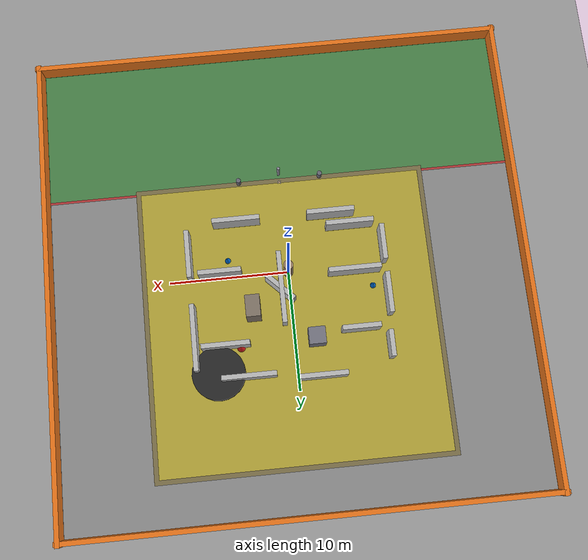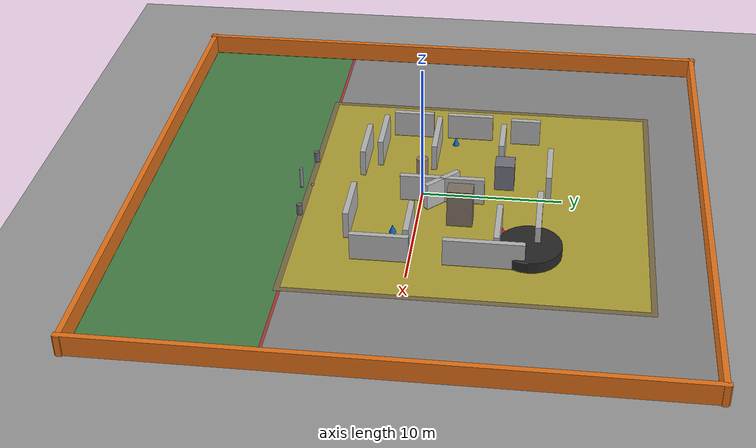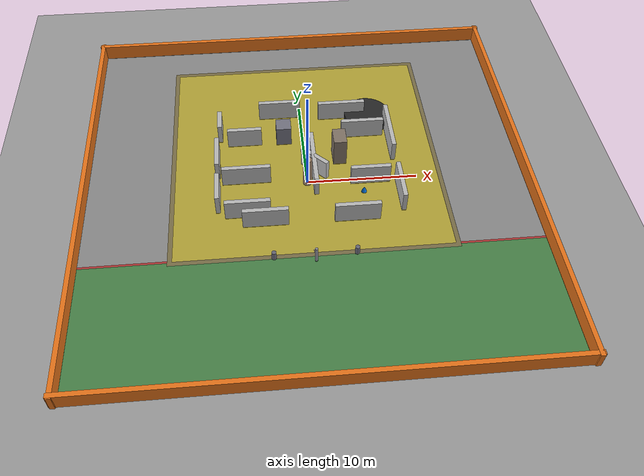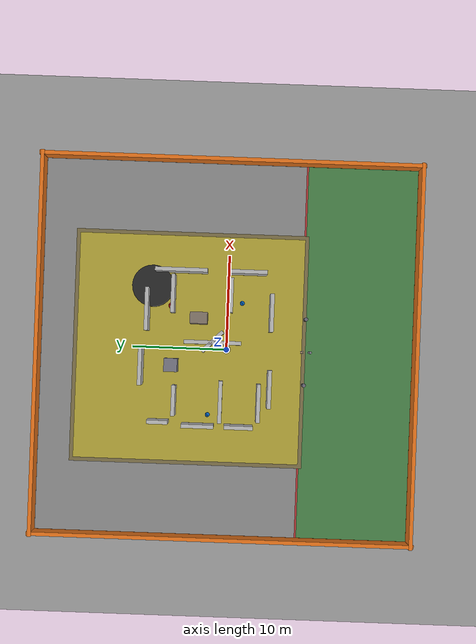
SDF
<?xml version="1.0" ?>
<sdf version="1.9">
  <world name="playfield">
    <physics name="1ms" type="ode">
      <max_step_size>0.001</max_step_size>
      <real_time_factor>1.0</real_time_factor>
      <real_time_update_rate>1000</real_time_update_rate>
    </physics>

    <plugin
      filename="gz-sim-physics-system"
      name="gz::sim::systems::Physics">
    </plugin>
    <plugin
      filename="gz-sim-user-commands-system"
      name="gz::sim::systems::UserCommands">
    </plugin>
    <!-- PX4 SITL sensors (IMU / barometer / GPS) require these system plugins, like PX4's default worlds. -->
    <plugin
      filename="gz-sim-contact-system"
      name="gz::sim::systems::Contact">
    </plugin>
    <plugin
      filename="gz-sim-imu-system"
      name="gz::sim::systems::Imu">
    </plugin>
    <plugin
      filename="gz-sim-air-pressure-system"
      name="gz::sim::systems::AirPressure">
    </plugin>
    <plugin
      filename="gz-sim-apply-link-wrench-system"
      name="gz::sim::systems::ApplyLinkWrench">
    </plugin>
    <plugin
      filename="gz-sim-navsat-system"
      name="gz::sim::systems::NavSat">
    </plugin>
    <plugin
      filename="gz-sim-sensors-system"
      name="gz::sim::systems::Sensors">
      <render_engine>ogre2</render_engine>
    </plugin>
    <plugin
      filename="gz-sim-scene-broadcaster-system"
      name="gz::sim::systems::SceneBroadcaster">
    </plugin>

    <light type="directional" name="sun">
      <cast_shadows>true</cast_shadows>
      <pose>0 0 10 0 0 0</pose>
      <diffuse>0.8 0.8 0.8 1</diffuse>
      <specular>0.2 0.2 0.2 1</specular>
      <attenuation>
        <range>1000</range>
        <constant>0.9</constant>
        <linear>0.01</linear>
        <quadratic>0.001</quadratic>
      </attenuation>
      <direction>-0.5 0.1 -0.9</direction>
    </light>

    <!-- Base field -->
    <model name="ground_plane">
      <static>true</static>
      <link name="link">
        <collision name="collision">
          <geometry>
            <plane>
              <normal>0 0 1</normal>
              <size>40 40</size>
            </plane>
          </geometry>
        </collision>
        <visual name="visual">
          <geometry>
            <plane>
              <normal>0 0 1</normal>
              <size>40 40</size>
            </plane>
          </geometry>
          <material>
            <ambient>0.6 0.6 0.6 1</ambient>
            <diffuse>0.6 0.6 0.6 1</diffuse>
            <specular>0.2 0.2 0.2 1</specular>
          </material>
        </visual>
      </link>
    </model>

    <!-- Zone overlays -->
    <model name="start_zone">
      <static>true</static>
      <link name="link">
        <visual name="visual">
          <pose>0 -14 0.01 0 0 0</pose>
          <geometry>
            <box>
              <size>40 12 0.02</size>
            </box>
          </geometry>
          <material>
            <ambient>0 0.45 0 0.5</ambient>
            <diffuse>0 0.45 0 0.5</diffuse>
          </material>
        </visual>
      </link>
    </model>

    <model name="known_zone">
      <static>true</static>
      <link name="link">
        <visual name="visual">
          <pose>0 6 0.01 0 0 0</pose>
          <geometry>
            <box>
              <size>40 28 0.02</size>
            </box>
          </geometry>
          <material>
            <ambient>0.5 0.5 0.5 0.45</ambient>
            <diffuse>0.5 0.5 0.5 0.45</diffuse>
          </material>
        </visual>
      </link>
    </model>

    <model name="search_boundary">
      <static>true</static>
      <link name="link">
        <visual name="visual">
          <pose>0 -8 0.015 0 0 0</pose>
          <geometry>
            <box>
              <size>40 0.2 0.02</size>
            </box>
          </geometry>
          <material>
            <ambient>0.8 0 0 0.6</ambient>
            <diffuse>0.8 0 0 0.6</diffuse>
          </material>
        </visual>
      </link>
    </model>

    <model name="unknown_zone">
      <static>true</static>
      <link name="link">
        <visual name="visual">
          <pose>0 4 0.02 0 0 0</pose>
          <geometry>
            <box>
              <size>24 24 0.03</size>
            </box>
          </geometry>
          <material>
            <ambient>0.8 0.7 0 0.6</ambient>
            <diffuse>0.8 0.7 0 0.6</diffuse>
          </material>
        </visual>
      </link>
    </model>

    <model name="unknown_zone_border">
      <static>true</static>
      <link name="link">
        <visual name="visual">
          <pose>0 4 0.025 0 0 0</pose>
          <geometry>
            <box>
              <size>24.8 24.8 0.01</size>
            </box>
          </geometry>
          <material>
            <ambient>0.4 0.3 0 0.5</ambient>
            <diffuse>0.4 0.3 0 0.5</diffuse>
          </material>
        </visual>
      </link>
    </model>

    <!-- Perimeter walls (1.5 m) -->
    <model name="perimeter_wall_north">
      <static>true</static>
      <pose>0 20 0 0 0 0</pose>
      <link name="link">
        <collision name="collision">
          <pose>0 0 0.75 0 0 0</pose>
          <geometry>
            <box>
              <size>40.6 0.4 1.5</size>
            </box>
          </geometry>
        </collision>
        <visual name="visual">
          <pose>0 0 0.75 0 0 0</pose>
          <geometry>
            <box>
              <size>40.6 0.4 1.5</size>
            </box>
          </geometry>
          <material>
            <ambient>0.9 0.45 0.1 1</ambient>
            <diffuse>0.9 0.45 0.1 1</diffuse>
          </material>
        </visual>
      </link>
    </model>

    <model name="perimeter_wall_south">
      <static>true</static>
      <pose>0 -20 0 0 0 0</pose>
      <link name="link">
        <collision name="collision">
          <pose>0 0 0.75 0 0 0</pose>
          <geometry>
            <box>
              <size>40.6 0.4 1.5</size>
            </box>
          </geometry>
        </collision>
        <visual name="visual">
          <pose>0 0 0.75 0 0 0</pose>
          <geometry>
            <box>
              <size>40.6 0.4 1.5</size>
            </box>
          </geometry>
          <material>
            <ambient>0.9 0.45 0.1 1</ambient>
            <diffuse>0.9 0.45 0.1 1</diffuse>
          </material>
        </visual>
      </link>
    </model>

    <model name="perimeter_wall_east">
      <static>true</static>
      <pose>20 0 0 0 0 0</pose>
      <link name="link">
        <collision name="collision">
          <pose>0 0 0.75 0 0 0</pose>
          <geometry>
            <box>
              <size>0.4 40.6 1.5</size>
            </box>
          </geometry>
        </collision>
        <visual name="visual">
          <pose>0 0 0.75 0 0 0</pose>
          <geometry>
            <box>
              <size>0.4 40.6 1.5</size>
            </box>
          </geometry>
          <material>
            <ambient>0.9 0.45 0.1 1</ambient>
            <diffuse>0.9 0.45 0.1 1</diffuse>
          </material>
        </visual>
      </link>
    </model>

    <model name="perimeter_wall_west">
      <static>true</static>
      <pose>-20 0 0 0 0 0</pose>
      <link name="link">
        <collision name="collision">
          <pose>0 0 0.75 0 0 0</pose>
          <geometry>
            <box>
              <size>0.4 40.6 1.5</size>
            </box>
          </geometry>
        </collision>
        <visual name="visual">
          <pose>0 0 0.75 0 0 0</pose>
          <geometry>
            <box>
              <size>0.4 40.6 1.5</size>
            </box>
          </geometry>
          <material>
            <ambient>0.9 0.45 0.1 1</ambient>
            <diffuse>0.9 0.45 0.1 1</diffuse>
          </material>
        </visual>
      </link>
    </model>

    <!-- Inner maze walls (2 m) -->
    <model name="inner_wall_west_lower">
      <static>true</static>
      <pose>-8.1 -1.5 0 0 0 0</pose>
      <link name="link">
        <collision name="collision">
          <pose>0 0 1 0 0 0</pose>
          <geometry>
            <box>
              <size>0.4 3 2</size>
            </box>
          </geometry>
        </collision>
        <visual name="visual">
          <pose>0 0 1 0 0 0</pose>
          <geometry>
            <box>
              <size>0.4 3 2</size>
            </box>
          </geometry>
        </visual>
      </link>
    </model>

    <model name="inner_wall_west_mid">
      <static>true</static>
      <pose>-8.1 2.8 0 0 0 0</pose>
      <link name="link">
        <collision name="collision">
          <pose>0 0 1 0 0 0</pose>
          <geometry>
            <box>
              <size>0.4 3.4 2</size>
            </box>
          </geometry>
        </collision>
        <visual name="visual">
          <pose>0 0 1 0 0 0</pose>
          <geometry>
            <box>
              <size>0.4 3.4 2</size>
            </box>
          </geometry>
        </visual>
      </link>
    </model>

    <model name="inner_wall_west_upper">
      <static>true</static>
      <pose>-7.8 7 0 0 0 0</pose>
      <link name="link">
        <collision name="collision">
          <pose>0 0 1 0 0 0</pose>
          <geometry>
            <box>
              <size>0.4 2.2 2</size>
            </box>
          </geometry>
        </collision>
        <visual name="visual">
          <pose>0 0 1 0 0 0</pose>
          <geometry>
            <box>
              <size>0.4 2.2 2</size>
            </box>
          </geometry>
        </visual>
      </link>
    </model>

    <model name="inner_wall_west_bridge_low">
      <static>true</static>
      <pose>-5.5 -3.5 0 0 0 0</pose>
      <link name="link">
        <collision name="collision">
          <pose>0 0 1 0 0 0</pose>
          <geometry>
            <box>
              <size>4 0.4 2</size>
            </box>
          </geometry>
        </collision>
        <visual name="visual">
          <pose>0 0 1 0 0 0</pose>
          <geometry>
            <box>
              <size>4 0.4 2</size>
            </box>
          </geometry>
        </visual>
      </link>
    </model>

    <model name="inner_wall_west_bridge_mid">
      <static>true</static>
      <pose>-5.5 0.5 0 0 0 0</pose>
      <link name="link">
        <collision name="collision">
          <pose>0 0 1 0 0 0</pose>
          <geometry>
            <box>
              <size>4.4 0.4 2</size>
            </box>
          </geometry>
        </collision>
        <visual name="visual">
          <pose>0 0 1 0 0 0</pose>
          <geometry>
            <box>
              <size>4.4 0.4 2</size>
            </box>
          </geometry>
        </visual>
      </link>
    </model>

    <model name="inner_wall_west_bridge_high">
      <static>true</static>
      <pose>-5.5 5.4 0 0 0 0</pose>
      <link name="link">
        <collision name="collision">
          <pose>0 0 1 0 0 0</pose>
          <geometry>
            <box>
              <size>3.2 0.4 2</size>
            </box>
          </geometry>
        </collision>
        <visual name="visual">
          <pose>0 0 1 0 0 0</pose>
          <geometry>
            <box>
              <size>3.2 0.4 2</size>
            </box>
          </geometry>
        </visual>
      </link>
    </model>

    <model name="inner_wall_north_left">
      <static>true</static>
      <pose>-2 9 0 0 0 0</pose>
      <link name="link">
        <collision name="collision">
          <pose>0 0 1 0 0 0</pose>
          <geometry>
            <box>
              <size>4 0.4 2</size>
            </box>
          </geometry>
        </collision>
        <visual name="visual">
          <pose>0 0 1 0 0 0</pose>
          <geometry>
            <box>
              <size>4 0.4 2</size>
            </box>
          </geometry>
        </visual>
      </link>
    </model>

    <model name="inner_wall_north_right">
      <static>true</static>
      <pose>4 8.5 0 0 0 0</pose>
      <link name="link">
        <collision name="collision">
          <pose>0 0 1 0 0 0</pose>
          <geometry>
            <box>
              <size>4.5 0.4 2</size>
            </box>
          </geometry>
        </collision>
        <visual name="visual">
          <pose>0 0 1 0 0 0</pose>
          <geometry>
            <box>
              <size>4.5 0.4 2</size>
            </box>
          </geometry>
        </visual>
      </link>
    </model>

    <model name="inner_wall_east_vertical_top">
      <static>true</static>
      <pose>8.2 5 0 0 0 0</pose>
      <link name="link">
        <collision name="collision">
          <pose>0 0 1 0 0 0</pose>
          <geometry>
            <box>
              <size>0.4 5.5 2</size>
            </box>
          </geometry>
        </collision>
        <visual name="visual">
          <pose>0 0 1 0 0 0</pose>
          <geometry>
            <box>
              <size>0.4 5.5 2</size>
            </box>
          </geometry>
        </visual>
      </link>
    </model>

    <model name="inner_wall_east_vertical_bottom">
      <static>true</static>
      <pose>8.2 -2 0 0 0 0</pose>
      <link name="link">
        <collision name="collision">
          <pose>0 0 1 0 0 0</pose>
          <geometry>
            <box>
              <size>0.4 4 2</size>
            </box>
          </geometry>
        </collision>
        <visual name="visual">
          <pose>0 0 1 0 0 0</pose>
          <geometry>
            <box>
              <size>0.4 4 2</size>
            </box>
          </geometry>
        </visual>
      </link>
    </model>

    <model name="inner_wall_east_bridge_high">
      <static>true</static>
      <pose>5.7 5.8 0 0 0 0</pose>
      <link name="link">
        <collision name="collision">
          <pose>0 0 1 0 0 0</pose>
          <geometry>
            <box>
              <size>4 0.4 2</size>
            </box>
          </geometry>
        </collision>
        <visual name="visual">
          <pose>0 0 1 0 0 0</pose>
          <geometry>
            <box>
              <size>4 0.4 2</size>
            </box>
          </geometry>
        </visual>
      </link>
    </model>

    <model name="inner_wall_east_bridge_low">
      <static>true</static>
      <pose>5.7 -0.3 0 0 0 0</pose>
      <link name="link">
        <collision name="collision">
          <pose>0 0 1 0 0 0</pose>
          <geometry>
            <box>
              <size>3.6 0.4 2</size>
            </box>
          </geometry>
        </collision>
        <visual name="visual">
          <pose>0 0 1 0 0 0</pose>
          <geometry>
            <box>
              <size>3.6 0.4 2</size>
            </box>
          </geometry>
        </visual>
      </link>
    </model>

    <model name="inner_wall_south_left">
      <static>true</static>
      <pose>-4 -4.6 0 0 0 0</pose>
      <link name="link">
        <collision name="collision">
          <pose>0 0 1 0 0 0</pose>
          <geometry>
            <box>
              <size>4 0.4 2</size>
            </box>
          </geometry>
        </collision>
        <visual name="visual">
          <pose>0 0 1 0 0 0</pose>
          <geometry>
            <box>
              <size>4 0.4 2</size>
            </box>
          </geometry>
        </visual>
      </link>
    </model>

    <model name="inner_wall_south_right">
      <static>true</static>
      <pose>4 -4.6 0 0 0 0</pose>
      <link name="link">
        <collision name="collision">
          <pose>0 0 1 0 0 0</pose>
          <geometry>
            <box>
              <size>4 0.4 2</size>
            </box>
          </geometry>
        </collision>
        <visual name="visual">
          <pose>0 0 1 0 0 0</pose>
          <geometry>
            <box>
              <size>4 0.4 2</size>
            </box>
          </geometry>
        </visual>
      </link>
    </model>

    <model name="inner_wall_center_vertical">
      <static>true</static>
      <pose>0.7 1.5 0 0 0 0</pose>
      <link name="link">
        <collision name="collision">
          <pose>0 0 1 0 0 0</pose>
          <geometry>
            <box>
              <size>0.4 6 2</size>
            </box>
          </geometry>
        </collision>
        <visual name="visual">
          <pose>0 0 1 0 0 0</pose>
          <geometry>
            <box>
              <size>0.4 6 2</size>
            </box>
          </geometry>
        </visual>
      </link>
    </model>

    <model name="inner_wall_center_brace">
      <static>true</static>
      <pose>0.8 1.5 0 0 0 0.7854</pose>
      <link name="link">
        <collision name="collision">
          <pose>0 0 1 0 0 0</pose>
          <geometry>
            <box>
              <size>0.4 3 2</size>
            </box>
          </geometry>
        </collision>
        <visual name="visual">
          <pose>0 0 1 0 0 0</pose>
          <geometry>
            <box>
              <size>0.4 3 2</size>
            </box>
          </geometry>
        </visual>
      </link>
    </model>

    <!-- Start area clutter -->
    <model name="start_post_left">
      <static>true</static>
      <pose>-3.5 -8.3 0 0 0 0</pose>
      <link name="link">
        <collision name="collision">
          <pose>0 0 0.4 0 0 0</pose>
          <geometry>
            <cylinder>
              <radius>0.2</radius>
              <length>0.8</length>
            </cylinder>
          </geometry>
        </collision>
        <visual name="visual">
          <pose>0 0 0.4 0 0 0</pose>
          <geometry>
            <cylinder>
              <radius>0.2</radius>
              <length>0.8</length>
            </cylinder>
          </geometry>
          <material>
            <ambient>0.3 0.3 0.35 1</ambient>
            <diffuse>0.4 0.4 0.45 1</diffuse>
          </material>
        </visual>
      </link>
    </model>

    <model name="start_post_right">
      <static>true</static>
      <pose>3.5 -8.3 0 0 0 0</pose>
      <link name="link">
        <collision name="collision">
          <pose>0 0 0.4 0 0 0</pose>
          <geometry>
            <cylinder>
              <radius>0.2</radius>
              <length>0.8</length>
            </cylinder>
          </geometry>
        </collision>
        <visual name="visual">
          <pose>0 0 0.4 0 0 0</pose>
          <geometry>
            <cylinder>
              <radius>0.2</radius>
              <length>0.8</length>
            </cylinder>
          </geometry>
          <material>
            <ambient>0.3 0.3 0.35 1</ambient>
            <diffuse>0.4 0.4 0.45 1</diffuse>
          </material>
        </visual>
      </link>
    </model>

    <model name="start_low_bar">
      <static>true</static>
      <pose>0 -8.8 0 0 0 1.0472</pose>
      <link name="link">
        <collision name="collision">
          <pose>0 0 0.35 0 0 0</pose>
          <geometry>
            <cylinder>
              <radius>0.12</radius>
              <length>2.4</length>
            </cylinder>
          </geometry>
        </collision>
        <visual name="visual">
          <pose>0 0 0.35 0 0 0</pose>
          <geometry>
            <cylinder>
              <radius>0.12</radius>
              <length>2.4</length>
            </cylinder>
          </geometry>
          <material>
            <ambient>0.45 0.45 0.5 1</ambient>
            <diffuse>0.55 0.55 0.6 1</diffuse>
          </material>
        </visual>
      </link>
    </model>

    <!-- Victim markers -->
    <model name="victim_regular_west">
      <static>true</static>
      <pose>-7 1.8 0 0 0 0</pose>
      <link name="link">
        <collision name="collision">
          <pose>0 0 0.3 0 0 0</pose>
          <geometry>
            <cone>
              <radius>0.25</radius>
              <length>0.6</length>
            </cone>
          </geometry>
        </collision>
        <visual name="visual">
          <pose>0 0 0.3 0 0 0</pose>
          <geometry>
            <cone>
              <radius>0.25</radius>
              <length>0.6</length>
            </cone>
          </geometry>
          <material>
            <ambient>0 0.4 0.8 1</ambient>
            <diffuse>0 0.4 0.8 1</diffuse>
          </material>
        </visual>
      </link>
    </model>

    <model name="victim_regular_south">
      <static>true</static>
      <pose>5 -1.5 0 0 0 0</pose>
      <link name="link">
        <collision name="collision">
          <pose>0 0 0.3 0 0 0</pose>
          <geometry>
            <cone>
              <radius>0.25</radius>
              <length>0.6</length>
            </cone>
          </geometry>
        </collision>
        <visual name="visual">
          <pose>0 0 0.3 0 0 0</pose>
          <geometry>
            <cone>
              <radius>0.25</radius>
              <length>0.6</length>
            </cone>
          </geometry>
          <material>
            <ambient>0 0.4 0.8 1</ambient>
            <diffuse>0 0.4 0.8 1</diffuse>
          </material>
        </visual>
      </link>
    </model>

    <model name="victim_bonus">
      <static>true</static>
      <pose>4.5 6 0 0 0 0</pose>
      <link name="link">
        <collision name="collision">
          <pose>0 0 0.35 0 0 0</pose>
          <geometry>
            <cone>
              <radius>0.35</radius>
              <length>0.7</length>
            </cone>
          </geometry>
        </collision>
        <visual name="visual">
          <pose>0 0 0.35 0 0 0</pose>
          <geometry>
            <cone>
              <radius>0.35</radius>
              <length>0.7</length>
            </cone>
          </geometry>
          <material>
            <ambient>0.8 0.1 0.1 1</ambient>
            <diffuse>0.8 0.1 0.1 1</diffuse>
          </material>
        </visual>
      </link>
    </model>

    <!-- Fire hazard -->
    <model name="fire_zone">
      <static>true</static>
      <link name="link">
        <visual name="visual">
          <pose>6.5 8 0.02 0 0 0</pose>
          <geometry>
            <cylinder>
              <radius>2.2</radius>
              <length>0.02</length>
            </cylinder>
          </geometry>
          <material>
            <ambient>0.8 0 0 0.6</ambient>
            <diffuse>0.8 0 0 0.6</diffuse>
          </material>
        </visual>
      </link>
    </model>

    <model name="fire_retaining_ring">
      <static>true</static>
      <pose>6.5 8 0 0 0 0</pose>
      <link name="link">
        <collision name="collision">
          <pose>0 0 0.4 0 0 0</pose>
          <geometry>
            <cylinder>
              <radius>2.2</radius>
              <length>0.8</length>
            </cylinder>
          </geometry>
        </collision>
        <visual name="visual">
          <pose>0 0 0.4 0 0 0</pose>
          <geometry>
            <cylinder>
              <radius>2.2</radius>
              <length>0.8</length>
            </cylinder>
          </geometry>
          <material>
            <ambient>0.2 0.2 0.2 1</ambient>
            <diffuse>0.15 0.15 0.15 1</diffuse>
          </material>
        </visual>
      </link>
    </model>

    <!-- Central plaza clutter -->
    <model name="central_pillar">
      <static>true</static>
      <pose>0 0 0 0 0 0</pose>
      <link name="link">
        <collision name="collision">
          <pose>0 0 1.5 0 0 0</pose>
          <geometry>
            <cylinder>
              <radius>0.4</radius>
              <length>3</length>
            </cylinder>
          </geometry>
        </collision>
        <visual name="visual">
          <pose>0 0 1.5 0 0 0</pose>
          <geometry>
            <cylinder>
              <radius>0.4</radius>
              <length>3</length>
            </cylinder>
          </geometry>
          <material>
            <ambient>0.5 0.4 0.3 1</ambient>
            <diffuse>0.6 0.5 0.4 1</diffuse>
          </material>
        </visual>
      </link>
    </model>

    <model name="north_plaza_block">
      <static>true</static>
      <pose>-1.8 5.8 0 0 0 0</pose>
      <link name="link">
        <collision name="collision">
          <pose>0 0 1 0 0 0</pose>
          <geometry>
            <box>
              <size>1.4 1.4 2</size>
            </box>
          </geometry>
        </collision>
        <visual name="visual">
          <pose>0 0 1 0 0 0</pose>
          <geometry>
            <box>
              <size>1.4 1.4 2</size>
            </box>
          </geometry>
          <material>
            <ambient>0.35 0.35 0.4 1</ambient>
            <diffuse>0.45 0.45 0.5 1</diffuse>
          </material>
        </visual>
      </link>
    </model>

    <model name="east_plaza_block">
      <static>true</static>
      <pose>3.2 3 0 0 0 0</pose>
      <link name="link">
        <collision name="collision">
          <pose>0 0 1.4 0 0 0</pose>
          <geometry>
            <box>
              <size>1.2 1.8 2.8</size>
            </box>
          </geometry>
        </collision>
        <visual name="visual">
          <pose>0 0 1.4 0 0 0</pose>
          <geometry>
            <box>
              <size>1.2 1.8 2.8</size>
            </box>
          </geometry>
          <material>
            <ambient>0.4 0.35 0.3 1</ambient>
            <diffuse>0.5 0.45 0.4 1</diffuse>
          </material>
        </visual>
      </link>
    </model>

    <!-- Robot spawn -->
    <include>
      <uri>model://rex_quadcopter</uri>
      <name>robot</name>
      <pose>0 -8 0.05 0 0 0</pose>
    </include>
  </world>
</sdf>

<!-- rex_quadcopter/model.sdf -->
<sdf version="1.9">
  <model name="rex_quadcopter">
    <static>false</static>

    <!-- Main body link -->
    <link name="base_link">
      <pose>0 0 0.15 0 0 0</pose>

      <inertial>
        <mass>0.3</mass>
        <inertia>
          <ixx>0.001</ixx>
          <iyy>0.001</iyy>
          <izz>0.002</izz>
          <ixy>0</ixy>
          <ixz>0</ixz>
          <iyz>0</iyz>
        </inertia>
      </inertial>

      <!-- Disable gravity on the link (re-enable when you add rotors) -->
      <gravity>false</gravity>

      <!-- Simple collision box -->
      <collision name="body_collision">
        <geometry>
          <box>
            <size>0.15 0.15 0.05</size>
          </box>
        </geometry>
      </collision>

      <!-- ===================== FRAME (dual plates) ===================== -->
      <visual name="frame_top">
        <pose>0 0 0.020 0 0 0</pose>
        <geometry><box><size>0.18 0.18 0.004</size></box></geometry>
        <material>
          <ambient>0.65 0.55 0.45 1</ambient>
          <diffuse>0.75 0.60 0.50 1</diffuse>
          <specular>0.2 0.2 0.2 1</specular>
        </material>
      </visual>

      <visual name="frame_bottom">
        <pose>0 0 -0.020 0 0 0</pose>
        <geometry><box><size>0.18 0.18 0.004</size></box></geometry>
        <material>
          <ambient>0.65 0.55 0.45 1</ambient>
          <diffuse>0.75 0.60 0.50 1</diffuse>
          <specular>0.2 0.2 0.2 1</specular>
        </material>
      </visual>

      <!-- ===================== GOLD STANDOFFS ===================== -->
      <visual name="standoff_fr">
        <pose> 0.07  0.07 0 0 0 0</pose>
        <geometry><cylinder><radius>0.004</radius><length>0.040</length></cylinder></geometry>
        <material><ambient>0.9 0.8 0.3 1</ambient><diffuse>1.0 0.85 0.35 1</diffuse></material>
      </visual>
      <visual name="standoff_fl">
        <pose>-0.07  0.07 0 0 0 0</pose>
        <geometry><cylinder><radius>0.004</radius><length>0.040</length></cylinder></geometry>
        <material><ambient>0.9 0.8 0.3 1</ambient><diffuse>1.0 0.85 0.35 1</diffuse></material>
      </visual>
      <visual name="standoff_br">
        <pose> 0.07 -0.07 0 0 0 0</pose>
        <geometry><cylinder><radius>0.004</radius><length>0.040</length></cylinder></geometry>
        <material><ambient>0.9 0.8 0.3 1</ambient><diffuse>1.0 0.85 0.35 1</diffuse></material>
      </visual>
      <visual name="standoff_bl">
        <pose>-0.07 -0.07 0 0 0 0</pose>
        <geometry><cylinder><radius>0.004</radius><length>0.040</length></cylinder></geometry>
      </visual>

      <!-- ===================== THIN GOLD LEGS / PINS ===================== -->
      <visual name="leg_fr">
        <pose> 0.055  0.055 -0.040 0 0 0</pose>
        <geometry><cylinder><radius>0.0025</radius><length>0.030</length></cylinder></geometry>
      </visual>
      <visual name="leg_fl">
        <pose>-0.055  0.055 -0.040 0 0 0</pose>
        <geometry><cylinder><radius>0.0025</radius><length>0.030</length></cylinder></geometry>
      </visual>
      <visual name="leg_br">
        <pose> 0.055 -0.055 -0.040 0 0 0</pose>
        <geometry><cylinder><radius>0.0025</radius><length>0.030</length></cylinder></geometry>
      </visual>
      <visual name="leg_bl">
        <pose>-0.055 -0.055 -0.040 0 0 0</pose>
        <geometry><cylinder><radius>0.0025</radius><length>0.030</length></cylinder></geometry>
      </visual>

      <!-- ===================== MOTOR CANS ===================== -->
      <visual name="motor_fr">
        <pose> 0.095  0.095 0.012 0 0 0</pose>
        <geometry><cylinder><radius>0.018</radius><length>0.018</length></cylinder></geometry>
      </visual>
      <visual name="motor_fl">
        <pose>-0.095  0.095 0.012 0 0 0</pose>
        <geometry><cylinder><radius>0.018</radius><length>0.018</length></cylinder></geometry>
      </visual>
      <visual name="motor_br">
        <pose> 0.095 -0.095 0.012 0 0 0</pose>
        <geometry><cylinder><radius>0.018</radius><length>0.018</length></cylinder></geometry>
      </visual>
      <visual name="motor_bl">
        <pose>-0.095 -0.095 0.012 0 0 0</pose>
        <geometry><cylinder><radius>0.018</radius><length>0.018</length></cylinder></geometry>
      </visual>

      <!-- ===================== DARK PROPS ABOVE MOTORS ===================== -->
      <visual name="prop_fr">
        <pose> 0.095  0.095 0.022 0 0 0</pose>
        <geometry><cylinder><radius>0.050</radius><length>0.0015</length></cylinder></geometry>
      </visual>
      <visual name="prop_fl">
        <pose>-0.095  0.095 0.022 0 0 0</pose>
        <geometry><cylinder><radius>0.050</radius><length>0.0015</length></cylinder></geometry>
      </visual>
      <visual name="prop_br">
        <pose> 0.095 -0.095 0.022 0 0 0</pose>
        <geometry><cylinder><radius>0.050</radius><length>0.0015</length></cylinder></geometry>
      </visual>
      <visual name="prop_bl">
        <pose>-0.095 -0.095 0.022 0 0 0</pose>
        <geometry><cylinder><radius>0.050</radius><length>0.0015</length></cylinder></geometry>
      </visual>

      <!-- ===================== BLUE STATUS LED ===================== -->
      <visual name="status_led">
        <pose>0 0 -0.018 0 0 0</pose>
        <geometry><sphere><radius>0.006</radius></sphere></geometry>
      </visual>

      <!-- ===================== 8 RAY-BASED RANGE SENSORS ===================== -->
      <!-- Simple laser beams publishing LaserScan messages for debugging. -->
      <sensor name="tof_front" type="gpu_lidar">
        <pose>0.12 0 0 0 0 0</pose>
        <lidar>
          <scan>
            <horizontal>
              <samples>5</samples>
              <resolution>1</resolution>
              <min_angle>-0.5235987756</min_angle>
              <max_angle>0.5235987756</max_angle>
            </horizontal>
          </scan>
          <range>
            <min>0.05</min>
            <max>6.0</max>
            <resolution>0.001</resolution>
          </range>
        </lidar>
        <always_on>true</always_on>
        <update_rate>20</update_rate>
        <visualize>true</visualize>
        <topic>/world/playfield/model/robot/link/base_link/sensor/tof_front/scan</topic>
      </sensor>

      <sensor name="tof_front_right" type="gpu_lidar">
        <pose>0.085 0.085 0 0 0 0.7853981634</pose>
        <lidar>
          <scan>
            <horizontal>
              <samples>5</samples>
              <resolution>1</resolution>
              <min_angle>-0.5235987756</min_angle>
              <max_angle>0.5235987756</max_angle>
            </horizontal>
          </scan>
          <range>
            <min>0.05</min>
            <max>6.0</max>
            <resolution>0.001</resolution>
          </range>
        </lidar>
        <always_on>true</always_on>
        <update_rate>20</update_rate>
        <visualize>true</visualize>
        <topic>/world/playfield/model/robot/link/base_link/sensor/tof_front_right/scan</topic>
      </sensor>

      <sensor name="tof_right" type="gpu_lidar">
        <pose>0 0.12 0 0 0 1.5707963268</pose>
        <lidar>
          <scan>
            <horizontal>
              <samples>5</samples>
              <resolution>1</resolution>
              <min_angle>-0.5235987756</min_angle>
              <max_angle>0.5235987756</max_angle>
            </horizontal>
          </scan>
          <range>
            <min>0.05</min>
            <max>6.0</max>
            <resolution>0.001</resolution>
          </range>
        </lidar>
        <always_on>true</always_on>
        <update_rate>20</update_rate>
        <visualize>true</visualize>
        <topic>/world/playfield/model/robot/link/base_link/sensor/tof_right/scan</topic>
      </sensor>

      <sensor name="tof_back_right" type="gpu_lidar">
        <pose>-0.085 0.085 0 0 0 2.3561944902</pose>
        <lidar>
          <scan>
            <horizontal>
              <samples>5</samples>
              <resolution>1</resolution>
              <min_angle>-0.5235987756</min_angle>
              <max_angle>0.5235987756</max_angle>
            </horizontal>
          </scan>
          <range>
            <min>0.05</min>
            <max>6.0</max>
            <resolution>0.001</resolution>
          </range>
        </lidar>
        <always_on>true</always_on>
        <update_rate>20</update_rate>
        <visualize>true</visualize>
        <topic>/world/playfield/model/robot/link/base_link/sensor/tof_back_right/scan</topic>
      </sensor>

      <sensor name="tof_back" type="gpu_lidar">
        <pose>-0.12 0 0 0 0 3.1415926536</pose>
        <lidar>
          <scan>
            <horizontal>
              <samples>5</samples>
              <resolution>1</resolution>
              <min_angle>-0.5235987756</min_angle>
              <max_angle>0.5235987756</max_angle>
            </horizontal>
          </scan>
          <range>
            <min>0.05</min>
            <max>6.0</max>
            <resolution>0.001</resolution>
          </range>
        </lidar>
        <always_on>true</always_on>
        <update_rate>20</update_rate>
        <visualize>true</visualize>
        <topic>/world/playfield/model/robot/link/base_link/sensor/tof_back/scan</topic>
      </sensor>

      <sensor name="tof_back_left" type="gpu_lidar">
        <pose>-0.085 -0.085 0 0 0 -2.3561944902</pose>
        <lidar>
          <scan>
            <horizontal>
              <samples>5</samples>
              <resolution>1</resolution>
              <min_angle>-0.5235987756</min_angle>
              <max_angle>0.5235987756</max_angle>
            </horizontal>
          </scan>
          <range>
            <min>0.05</min>
            <max>6.0</max>
            <resolution>0.001</resolution>
          </range>
        </lidar>
        <always_on>true</always_on>
        <update_rate>20</update_rate>
        <visualize>true</visualize>
        <topic>/world/playfield/model/robot/link/base_link/sensor/tof_back_left/scan</topic>
      </sensor>

      <sensor name="tof_left" type="gpu_lidar">
        <pose>0 -0.12 0 0 0 -1.5707963268</pose>
        <lidar>
          <scan>
            <horizontal>
              <samples>5</samples>
              <resolution>1</resolution>
              <min_angle>-0.5235987756</min_angle>
              <max_angle>0.5235987756</max_angle>
            </horizontal>
          </scan>
          <range>
            <min>0.05</min>
            <max>6.0</max>
            <resolution>0.001</resolution>
          </range>
        </lidar>
        <always_on>true</always_on>
        <update_rate>20</update_rate>
        <visualize>true</visualize>
        <topic>/world/playfield/model/robot/link/base_link/sensor/tof_left/scan</topic>
      </sensor>

      <sensor name="tof_front_left" type="gpu_lidar">
        <pose>0.085 -0.085 0 0 0 -0.7853981634</pose>
        <lidar>
          <scan>
            <horizontal>
              <samples>5</samples>
              <resolution>1</resolution>
              <min_angle>-0.5235987756</min_angle>
              <max_angle>0.5235987756</max_angle>
            </horizontal>
          </scan>
          <range>
            <min>0.05</min>
            <max>6.0</max>
            <resolution>0.001</resolution>
          </range>
        </lidar>
        <always_on>true</always_on>
        <update_rate>20</update_rate>
        <visualize>true</visualize>
        <topic>/world/playfield/model/robot/link/base_link/sensor/tof_front_left/scan</topic>
      </sensor>

    </link>

    <!-- Velocity control and odometry plugins -->
    <plugin name="gz::sim::systems::VelocityControl" filename="gz-sim-velocity-control-system">
      <topic>/cmd_vel</topic>
      <use_world_frame>false</use_world_frame>
      <max_linear_velocity>3</max_linear_velocity>
      <max_angular_velocity>2</max_angular_velocity>
    </plugin>

    <plugin name="gz::sim::systems::OdometryPublisher" filename="gz-sim-odometry-publisher-system">
      <topic>/odom</topic>
      <frame_id>robot/odom</frame_id>
      <child_frame_id>robot/base_link</child_frame_id>
      <publish_tf>true</publish_tf>
    </plugin>

  </model>
</sdf>
